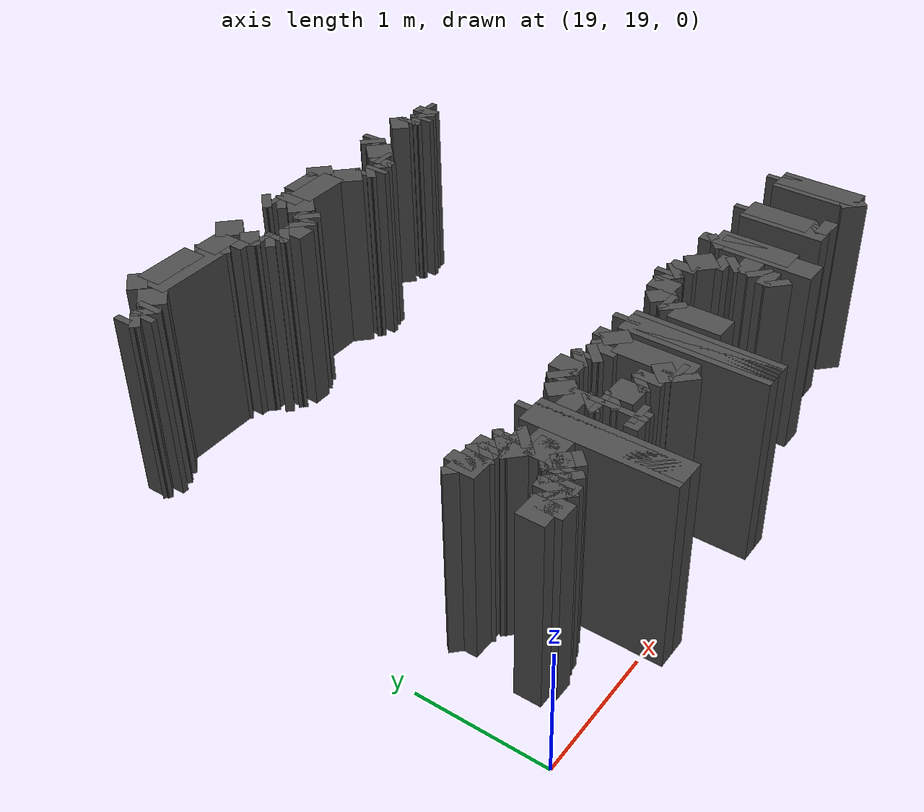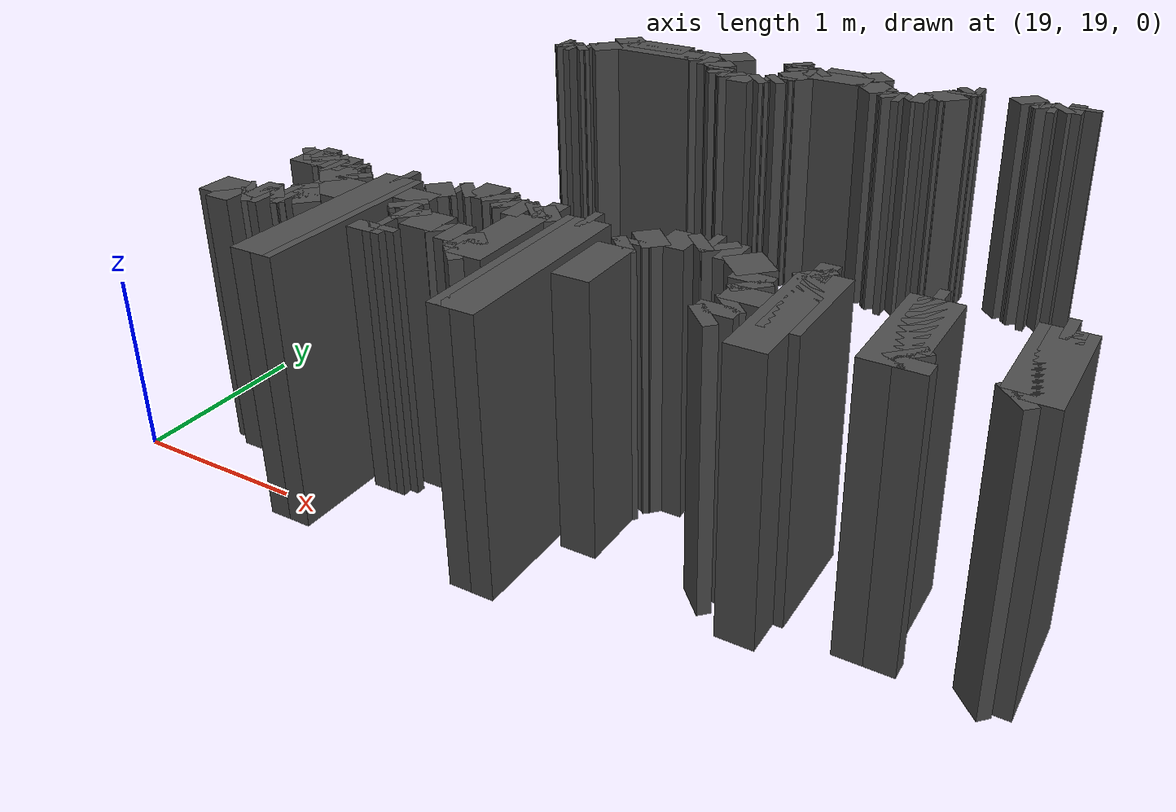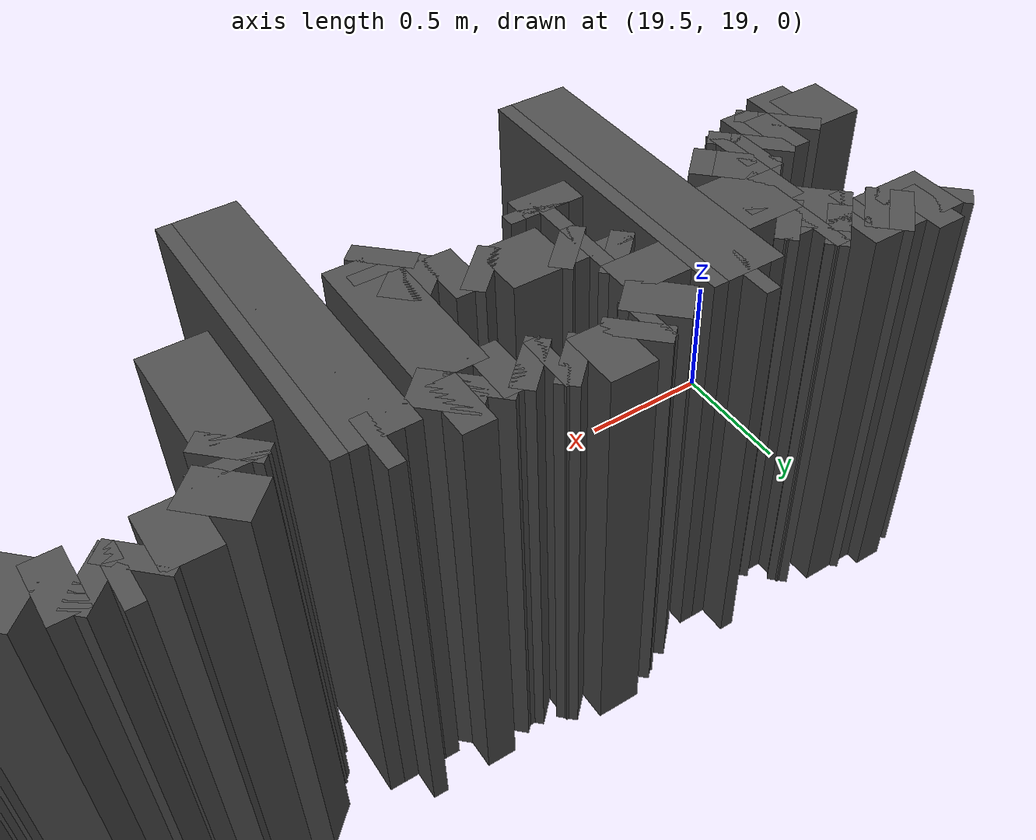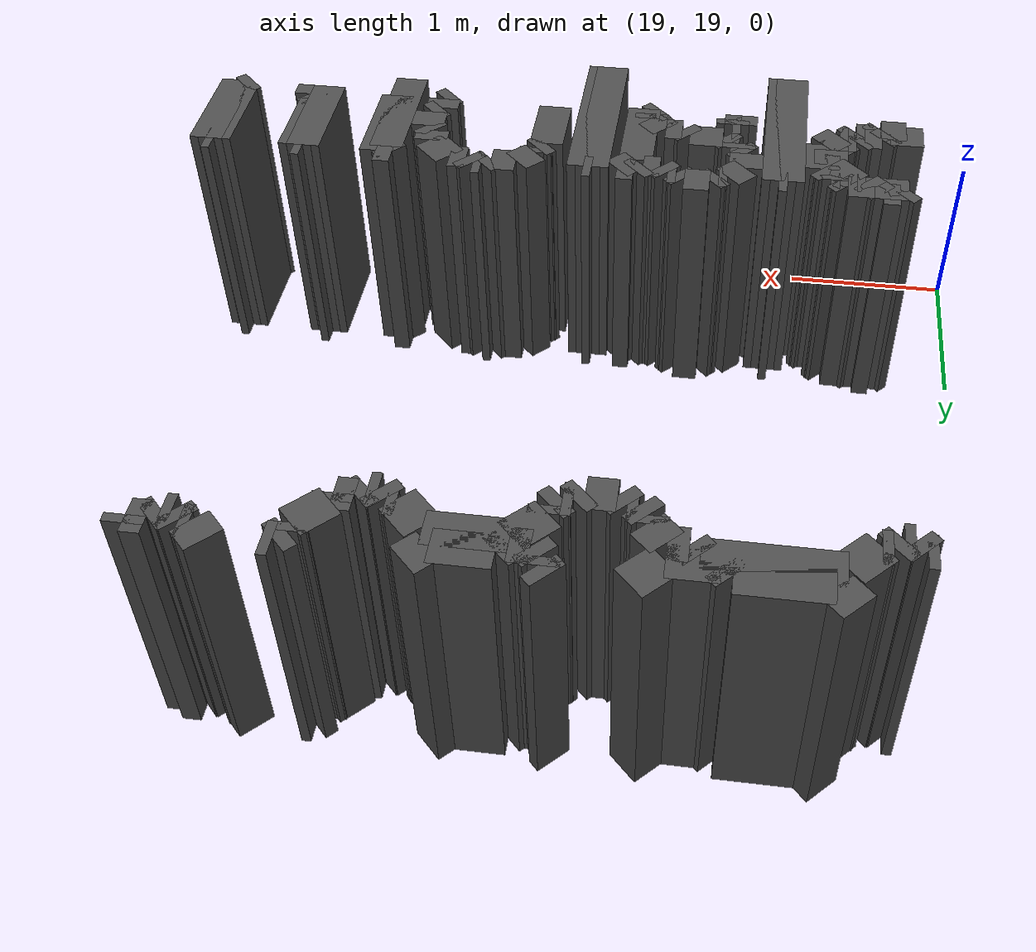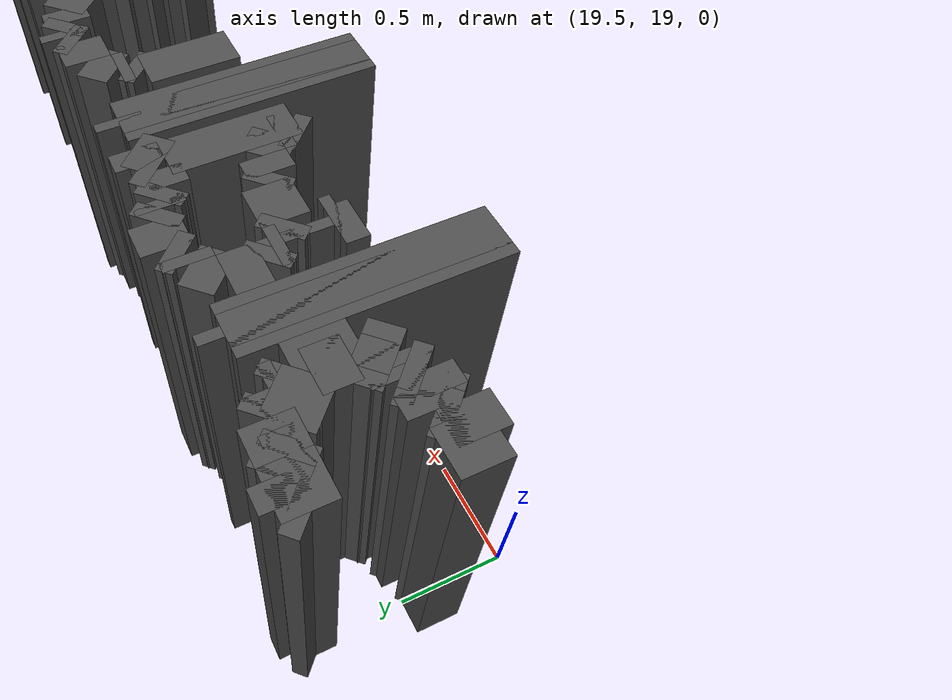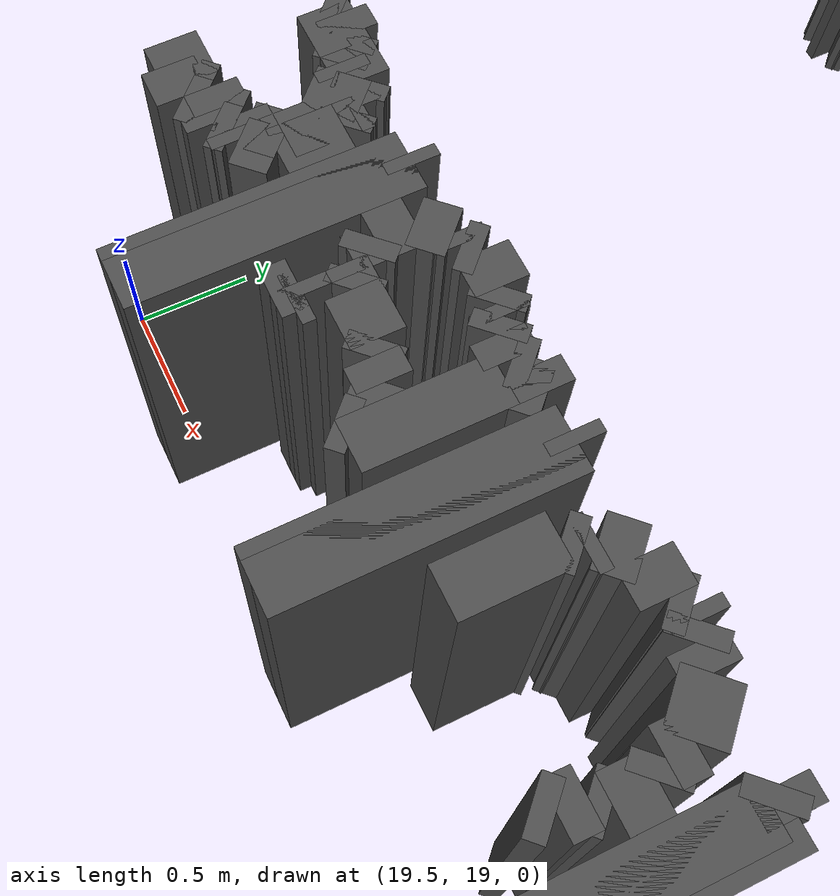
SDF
<sdf version="1.9">
 <model name="generated_walls">
  <static>true</static>
  <link name="wall_101_0">
   <pose>22.550 19.525 0.75 0 0 1.571</pose>
   <collision name="collision"><geometry><box><size>0.750 0.2 1.5</size></box></geometry></collision>
   <visual name="visual">
    <geometry><box><size>0.750 0.2 1.5</size></box></geometry>
    <material><ambient>0.3 0.3 0.3 1</ambient></material>
   </visual>
  </link>
  <link name="wall_101_1">
   <pose>22.525 19.925 0.75 0 0 2.356</pose>
   <collision name="collision"><geometry><box><size>0.071 0.2 1.5</size></box></geometry></collision>
   <visual name="visual">
    <geometry><box><size>0.071 0.2 1.5</size></box></geometry>
    <material><ambient>0.3 0.3 0.3 1</ambient></material>
   </visual>
  </link>
  <link name="wall_101_2">
   <pose>22.550 19.950 0.75 0 0 0.000</pose>
   <collision name="collision"><geometry><box><size>0.100 0.2 1.5</size></box></geometry></collision>
   <visual name="visual">
    <geometry><box><size>0.100 0.2 1.5</size></box></geometry>
    <material><ambient>0.3 0.3 0.3 1</ambient></material>
   </visual>
  </link>
  <link name="wall_101_3">
   <pose>22.600 19.650 0.75 0 0 -1.571</pose>
   <collision name="collision"><geometry><box><size>0.600 0.2 1.5</size></box></geometry></collision>
   <visual name="visual">
    <geometry><box><size>0.600 0.2 1.5</size></box></geometry>
    <material><ambient>0.3 0.3 0.3 1</ambient></material>
   </visual>
  </link>
  <link name="wall_101_7">
   <pose>23.050 19.625 0.75 0 0 1.571</pose>
   <collision name="collision"><geometry><box><size>0.650 0.2 1.5</size></box></geometry></collision>
   <visual name="visual">
    <geometry><box><size>0.650 0.2 1.5</size></box></geometry>
    <material><ambient>0.3 0.3 0.3 1</ambient></material>
   </visual>
  </link>
  <link name="wall_101_8">
   <pose>23.075 19.950 0.75 0 0 0.000</pose>
   <collision name="collision"><geometry><box><size>0.050 0.2 1.5</size></box></geometry></collision>
   <visual name="visual">
    <geometry><box><size>0.050 0.2 1.5</size></box></geometry>
    <material><ambient>0.3 0.3 0.3 1</ambient></material>
   </visual>
  </link>
  <link name="wall_101_9">
   <pose>23.100 19.700 0.75 0 0 -1.571</pose>
   <collision name="collision"><geometry><box><size>0.500 0.2 1.5</size></box></geometry></collision>
   <visual name="visual">
    <geometry><box><size>0.500 0.2 1.5</size></box></geometry>
    <material><ambient>0.3 0.3 0.3 1</ambient></material>
   </visual>
  </link>
  <link name="wall_101_10">
   <pose>23.125 19.425 0.75 0 0 -0.785</pose>
   <collision name="collision"><geometry><box><size>0.071 0.2 1.5</size></box></geometry></collision>
   <visual name="visual">
    <geometry><box><size>0.071 0.2 1.5</size></box></geometry>
    <material><ambient>0.3 0.3 0.3 1</ambient></material>
   </visual>
  </link>
  <link name="wall_101_11">
   <pose>23.150 19.350 0.75 0 0 -1.571</pose>
   <collision name="collision"><geometry><box><size>0.100 0.2 1.5</size></box></geometry></collision>
   <visual name="visual">
    <geometry><box><size>0.100 0.2 1.5</size></box></geometry>
    <material><ambient>0.3 0.3 0.3 1</ambient></material>
   </visual>
  </link>
  <link name="wall_101_16">
   <pose>23.575 19.325 0.75 0 0 0.785</pose>
   <collision name="collision"><geometry><box><size>0.071 0.2 1.5</size></box></geometry></collision>
   <visual name="visual">
    <geometry><box><size>0.071 0.2 1.5</size></box></geometry>
    <material><ambient>0.3 0.3 0.3 1</ambient></material>
   </visual>
  </link>
  <link name="wall_101_17">
   <pose>23.600 19.650 0.75 0 0 1.571</pose>
   <collision name="collision"><geometry><box><size>0.600 0.2 1.5</size></box></geometry></collision>
   <visual name="visual">
    <geometry><box><size>0.600 0.2 1.5</size></box></geometry>
    <material><ambient>0.3 0.3 0.3 1</ambient></material>
   </visual>
  </link>
  <link name="wall_101_18">
   <pose>23.625 19.950 0.75 0 0 0.000</pose>
   <collision name="collision"><geometry><box><size>0.050 0.2 1.5</size></box></geometry></collision>
   <visual name="visual">
    <geometry><box><size>0.050 0.2 1.5</size></box></geometry>
    <material><ambient>0.3 0.3 0.3 1</ambient></material>
   </visual>
  </link>
  <link name="wall_101_19">
   <pose>23.650 19.625 0.75 0 0 -1.571</pose>
   <collision name="collision"><geometry><box><size>0.650 0.2 1.5</size></box></geometry></collision>
   <visual name="visual">
    <geometry><box><size>0.650 0.2 1.5</size></box></geometry>
    <material><ambient>0.3 0.3 0.3 1</ambient></material>
   </visual>
  </link>
  <link name="wall_102_1">
   <pose>21.600 19.550 0.75 0 0 1.571</pose>
   <collision name="collision"><geometry><box><size>0.400 0.2 1.5</size></box></geometry></collision>
   <visual name="visual">
    <geometry><box><size>0.400 0.2 1.5</size></box></geometry>
    <material><ambient>0.3 0.3 0.3 1</ambient></material>
   </visual>
  </link>
  <link name="wall_102_2">
   <pose>21.625 19.775 0.75 0 0 0.785</pose>
   <collision name="collision"><geometry><box><size>0.071 0.2 1.5</size></box></geometry></collision>
   <visual name="visual">
    <geometry><box><size>0.071 0.2 1.5</size></box></geometry>
    <material><ambient>0.3 0.3 0.3 1</ambient></material>
   </visual>
  </link>
  <link name="wall_102_3">
   <pose>21.650 19.825 0.75 0 0 1.571</pose>
   <collision name="collision"><geometry><box><size>0.050 0.2 1.5</size></box></geometry></collision>
   <visual name="visual">
    <geometry><box><size>0.050 0.2 1.5</size></box></geometry>
    <material><ambient>0.3 0.3 0.3 1</ambient></material>
   </visual>
  </link>
  <link name="wall_102_4">
   <pose>21.700 19.900 0.75 0 0 0.785</pose>
   <collision name="collision"><geometry><box><size>0.141 0.2 1.5</size></box></geometry></collision>
   <visual name="visual">
    <geometry><box><size>0.141 0.2 1.5</size></box></geometry>
    <material><ambient>0.3 0.3 0.3 1</ambient></material>
   </visual>
  </link>
  <link name="wall_102_5">
   <pose>21.825 19.950 0.75 0 0 0.000</pose>
   <collision name="collision"><geometry><box><size>0.150 0.2 1.5</size></box></geometry></collision>
   <visual name="visual">
    <geometry><box><size>0.150 0.2 1.5</size></box></geometry>
    <material><ambient>0.3 0.3 0.3 1</ambient></material>
   </visual>
  </link>
  <link name="wall_102_6">
   <pose>21.925 19.975 0.75 0 0 0.785</pose>
   <collision name="collision"><geometry><box><size>0.071 0.2 1.5</size></box></geometry></collision>
   <visual name="visual">
    <geometry><box><size>0.071 0.2 1.5</size></box></geometry>
    <material><ambient>0.3 0.3 0.3 1</ambient></material>
   </visual>
  </link>
  <link name="wall_102_7">
   <pose>21.975 20.000 0.75 0 0 0.000</pose>
   <collision name="collision"><geometry><box><size>0.050 0.2 1.5</size></box></geometry></collision>
   <visual name="visual">
    <geometry><box><size>0.050 0.2 1.5</size></box></geometry>
    <material><ambient>0.3 0.3 0.3 1</ambient></material>
   </visual>
  </link>
  <link name="wall_102_8">
   <pose>22.025 19.975 0.75 0 0 -0.785</pose>
   <collision name="collision"><geometry><box><size>0.071 0.2 1.5</size></box></geometry></collision>
   <visual name="visual">
    <geometry><box><size>0.071 0.2 1.5</size></box></geometry>
    <material><ambient>0.3 0.3 0.3 1</ambient></material>
   </visual>
  </link>
  <link name="wall_102_9">
   <pose>22.100 19.950 0.75 0 0 0.000</pose>
   <collision name="collision"><geometry><box><size>0.100 0.2 1.5</size></box></geometry></collision>
   <visual name="visual">
    <geometry><box><size>0.100 0.2 1.5</size></box></geometry>
    <material><ambient>0.3 0.3 0.3 1</ambient></material>
   </visual>
  </link>
  <link name="wall_102_10">
   <pose>22.225 19.875 0.75 0 0 -0.785</pose>
   <collision name="collision"><geometry><box><size>0.212 0.2 1.5</size></box></geometry></collision>
   <visual name="visual">
    <geometry><box><size>0.212 0.2 1.5</size></box></geometry>
    <material><ambient>0.3 0.3 0.3 1</ambient></material>
   </visual>
  </link>
  <link name="wall_102_11">
   <pose>22.300 19.750 0.75 0 0 -1.571</pose>
   <collision name="collision"><geometry><box><size>0.100 0.2 1.5</size></box></geometry></collision>
   <visual name="visual">
    <geometry><box><size>0.100 0.2 1.5</size></box></geometry>
    <material><ambient>0.3 0.3 0.3 1</ambient></material>
   </visual>
  </link>
  <link name="wall_102_12">
   <pose>22.325 19.675 0.75 0 0 -0.785</pose>
   <collision name="collision"><geometry><box><size>0.071 0.2 1.5</size></box></geometry></collision>
   <visual name="visual">
    <geometry><box><size>0.071 0.2 1.5</size></box></geometry>
    <material><ambient>0.3 0.3 0.3 1</ambient></material>
   </visual>
  </link>
  <link name="wall_102_13">
   <pose>22.350 19.575 0.75 0 0 -1.571</pose>
   <collision name="collision"><geometry><box><size>0.150 0.2 1.5</size></box></geometry></collision>
   <visual name="visual">
    <geometry><box><size>0.150 0.2 1.5</size></box></geometry>
    <material><ambient>0.3 0.3 0.3 1</ambient></material>
   </visual>
  </link>
  <link name="wall_102_14">
   <pose>22.325 19.475 0.75 0 0 -2.356</pose>
   <collision name="collision"><geometry><box><size>0.071 0.2 1.5</size></box></geometry></collision>
   <visual name="visual">
    <geometry><box><size>0.071 0.2 1.5</size></box></geometry>
    <material><ambient>0.3 0.3 0.3 1</ambient></material>
   </visual>
  </link>
  <link name="wall_102_15">
   <pose>22.300 19.400 0.75 0 0 -1.571</pose>
   <collision name="collision"><geometry><box><size>0.100 0.2 1.5</size></box></geometry></collision>
   <visual name="visual">
    <geometry><box><size>0.100 0.2 1.5</size></box></geometry>
    <material><ambient>0.3 0.3 0.3 1</ambient></material>
   </visual>
  </link>
  <link name="wall_102_16">
   <pose>22.275 19.325 0.75 0 0 -2.356</pose>
   <collision name="collision"><geometry><box><size>0.071 0.2 1.5</size></box></geometry></collision>
   <visual name="visual">
    <geometry><box><size>0.071 0.2 1.5</size></box></geometry>
    <material><ambient>0.3 0.3 0.3 1</ambient></material>
   </visual>
  </link>
  <link name="wall_103_4">
   <pose>20.450 19.350 0.75 0 0 1.571</pose>
   <collision name="collision"><geometry><box><size>0.100 0.2 1.5</size></box></geometry></collision>
   <visual name="visual">
    <geometry><box><size>0.100 0.2 1.5</size></box></geometry>
    <material><ambient>0.3 0.3 0.3 1</ambient></material>
   </visual>
  </link>
  <link name="wall_103_5">
   <pose>20.475 19.400 0.75 0 0 0.000</pose>
   <collision name="collision"><geometry><box><size>0.050 0.2 1.5</size></box></geometry></collision>
   <visual name="visual">
    <geometry><box><size>0.050 0.2 1.5</size></box></geometry>
    <material><ambient>0.3 0.3 0.3 1</ambient></material>
   </visual>
  </link>
  <link name="wall_103_6">
   <pose>20.500 19.375 0.75 0 0 -1.571</pose>
   <collision name="collision"><geometry><box><size>0.050 0.2 1.5</size></box></geometry></collision>
   <visual name="visual">
    <geometry><box><size>0.050 0.2 1.5</size></box></geometry>
    <material><ambient>0.3 0.3 0.3 1</ambient></material>
   </visual>
  </link>
  <link name="wall_103_11">
   <pose>20.975 19.325 0.75 0 0 0.785</pose>
   <collision name="collision"><geometry><box><size>0.071 0.2 1.5</size></box></geometry></collision>
   <visual name="visual">
    <geometry><box><size>0.071 0.2 1.5</size></box></geometry>
    <material><ambient>0.3 0.3 0.3 1</ambient></material>
   </visual>
  </link>
  <link name="wall_103_12">
   <pose>21.000 19.375 0.75 0 0 1.571</pose>
   <collision name="collision"><geometry><box><size>0.050 0.2 1.5</size></box></geometry></collision>
   <visual name="visual">
    <geometry><box><size>0.050 0.2 1.5</size></box></geometry>
    <material><ambient>0.3 0.3 0.3 1</ambient></material>
   </visual>
  </link>
  <link name="wall_103_13">
   <pose>20.950 19.450 0.75 0 0 2.356</pose>
   <collision name="collision"><geometry><box><size>0.141 0.2 1.5</size></box></geometry></collision>
   <visual name="visual">
    <geometry><box><size>0.141 0.2 1.5</size></box></geometry>
    <material><ambient>0.3 0.3 0.3 1</ambient></material>
   </visual>
  </link>
  <link name="wall_103_14">
   <pose>20.850 19.500 0.75 0 0 3.142</pose>
   <collision name="collision"><geometry><box><size>0.100 0.2 1.5</size></box></geometry></collision>
   <visual name="visual">
    <geometry><box><size>0.100 0.2 1.5</size></box></geometry>
    <material><ambient>0.3 0.3 0.3 1</ambient></material>
   </visual>
  </link>
  <link name="wall_103_15">
   <pose>20.775 19.525 0.75 0 0 2.356</pose>
   <collision name="collision"><geometry><box><size>0.071 0.2 1.5</size></box></geometry></collision>
   <visual name="visual">
    <geometry><box><size>0.071 0.2 1.5</size></box></geometry>
    <material><ambient>0.3 0.3 0.3 1</ambient></material>
   </visual>
  </link>
  <link name="wall_103_16">
   <pose>20.650 19.550 0.75 0 0 3.142</pose>
   <collision name="collision"><geometry><box><size>0.200 0.2 1.5</size></box></geometry></collision>
   <visual name="visual">
    <geometry><box><size>0.200 0.2 1.5</size></box></geometry>
    <material><ambient>0.3 0.3 0.3 1</ambient></material>
   </visual>
  </link>
  <link name="wall_103_17">
   <pose>20.525 19.575 0.75 0 0 2.356</pose>
   <collision name="collision"><geometry><box><size>0.071 0.2 1.5</size></box></geometry></collision>
   <visual name="visual">
    <geometry><box><size>0.071 0.2 1.5</size></box></geometry>
    <material><ambient>0.3 0.3 0.3 1</ambient></material>
   </visual>
  </link>
  <link name="wall_103_18">
   <pose>20.475 19.600 0.75 0 0 3.142</pose>
   <collision name="collision"><geometry><box><size>0.050 0.2 1.5</size></box></geometry></collision>
   <visual name="visual">
    <geometry><box><size>0.050 0.2 1.5</size></box></geometry>
    <material><ambient>0.3 0.3 0.3 1</ambient></material>
   </visual>
  </link>
  <link name="wall_103_19">
   <pose>20.450 19.625 0.75 0 0 1.571</pose>
   <collision name="collision"><geometry><box><size>0.050 0.2 1.5</size></box></geometry></collision>
   <visual name="visual">
    <geometry><box><size>0.050 0.2 1.5</size></box></geometry>
    <material><ambient>0.3 0.3 0.3 1</ambient></material>
   </visual>
  </link>
  <link name="wall_103_20">
   <pose>20.425 19.675 0.75 0 0 2.356</pose>
   <collision name="collision"><geometry><box><size>0.071 0.2 1.5</size></box></geometry></collision>
   <visual name="visual">
    <geometry><box><size>0.071 0.2 1.5</size></box></geometry>
    <material><ambient>0.3 0.3 0.3 1</ambient></material>
   </visual>
  </link>
  <link name="wall_103_21">
   <pose>20.400 19.775 0.75 0 0 1.571</pose>
   <collision name="collision"><geometry><box><size>0.150 0.2 1.5</size></box></geometry></collision>
   <visual name="visual">
    <geometry><box><size>0.150 0.2 1.5</size></box></geometry>
    <material><ambient>0.3 0.3 0.3 1</ambient></material>
   </visual>
  </link>
  <link name="wall_103_22">
   <pose>20.450 19.900 0.75 0 0 0.785</pose>
   <collision name="collision"><geometry><box><size>0.141 0.2 1.5</size></box></geometry></collision>
   <visual name="visual">
    <geometry><box><size>0.141 0.2 1.5</size></box></geometry>
    <material><ambient>0.3 0.3 0.3 1</ambient></material>
   </visual>
  </link>
  <link name="wall_103_23">
   <pose>20.525 19.950 0.75 0 0 0.000</pose>
   <collision name="collision"><geometry><box><size>0.050 0.2 1.5</size></box></geometry></collision>
   <visual name="visual">
    <geometry><box><size>0.050 0.2 1.5</size></box></geometry>
    <material><ambient>0.3 0.3 0.3 1</ambient></material>
   </visual>
  </link>
  <link name="wall_103_24">
   <pose>20.575 19.975 0.75 0 0 0.785</pose>
   <collision name="collision"><geometry><box><size>0.071 0.2 1.5</size></box></geometry></collision>
   <visual name="visual">
    <geometry><box><size>0.071 0.2 1.5</size></box></geometry>
    <material><ambient>0.3 0.3 0.3 1</ambient></material>
   </visual>
  </link>
  <link name="wall_103_25">
   <pose>20.675 20.000 0.75 0 0 0.000</pose>
   <collision name="collision"><geometry><box><size>0.150 0.2 1.5</size></box></geometry></collision>
   <visual name="visual">
    <geometry><box><size>0.150 0.2 1.5</size></box></geometry>
    <material><ambient>0.3 0.3 0.3 1</ambient></material>
   </visual>
  </link>
  <link name="wall_103_26">
   <pose>20.775 19.975 0.75 0 0 -0.785</pose>
   <collision name="collision"><geometry><box><size>0.071 0.2 1.5</size></box></geometry></collision>
   <visual name="visual">
    <geometry><box><size>0.071 0.2 1.5</size></box></geometry>
    <material><ambient>0.3 0.3 0.3 1</ambient></material>
   </visual>
  </link>
  <link name="wall_103_27">
   <pose>20.825 19.950 0.75 0 0 0.000</pose>
   <collision name="collision"><geometry><box><size>0.050 0.2 1.5</size></box></geometry></collision>
   <visual name="visual">
    <geometry><box><size>0.050 0.2 1.5</size></box></geometry>
    <material><ambient>0.3 0.3 0.3 1</ambient></material>
   </visual>
  </link>
  <link name="wall_103_28">
   <pose>20.875 19.925 0.75 0 0 -0.785</pose>
   <collision name="collision"><geometry><box><size>0.071 0.2 1.5</size></box></geometry></collision>
   <visual name="visual">
    <geometry><box><size>0.071 0.2 1.5</size></box></geometry>
    <material><ambient>0.3 0.3 0.3 1</ambient></material>
   </visual>
  </link>
  <link name="wall_103_29">
   <pose>20.950 19.900 0.75 0 0 0.000</pose>
   <collision name="collision"><geometry><box><size>0.100 0.2 1.5</size></box></geometry></collision>
   <visual name="visual">
    <geometry><box><size>0.100 0.2 1.5</size></box></geometry>
    <material><ambient>0.3 0.3 0.3 1</ambient></material>
   </visual>
  </link>
  <link name="wall_103_30">
   <pose>21.025 19.925 0.75 0 0 0.785</pose>
   <collision name="collision"><geometry><box><size>0.071 0.2 1.5</size></box></geometry></collision>
   <visual name="visual">
    <geometry><box><size>0.071 0.2 1.5</size></box></geometry>
    <material><ambient>0.3 0.3 0.3 1</ambient></material>
   </visual>
  </link>
  <link name="wall_103_31">
   <pose>21.100 19.950 0.75 0 0 0.000</pose>
   <collision name="collision"><geometry><box><size>0.100 0.2 1.5</size></box></geometry></collision>
   <visual name="visual">
    <geometry><box><size>0.100 0.2 1.5</size></box></geometry>
    <material><ambient>0.3 0.3 0.3 1</ambient></material>
   </visual>
  </link>
  <link name="wall_103_32">
   <pose>21.100 19.900 0.75 0 0 -2.356</pose>
   <collision name="collision"><geometry><box><size>0.141 0.2 1.5</size></box></geometry></collision>
   <visual name="visual">
    <geometry><box><size>0.141 0.2 1.5</size></box></geometry>
    <material><ambient>0.3 0.3 0.3 1</ambient></material>
   </visual>
  </link>
  <link name="wall_103_33">
   <pose>21.050 19.575 0.75 0 0 -1.571</pose>
   <collision name="collision"><geometry><box><size>0.550 0.2 1.5</size></box></geometry></collision>
   <visual name="visual">
    <geometry><box><size>0.550 0.2 1.5</size></box></geometry>
    <material><ambient>0.3 0.3 0.3 1</ambient></material>
   </visual>
  </link>
  <link name="wall_108_0">
   <pose>21.300 19.400 0.75 0 0 1.571</pose>
   <collision name="collision"><geometry><box><size>1.100 0.2 1.5</size></box></geometry></collision>
   <visual name="visual">
    <geometry><box><size>1.100 0.2 1.5</size></box></geometry>
    <material><ambient>0.3 0.3 0.3 1</ambient></material>
   </visual>
  </link>
  <link name="wall_108_1">
   <pose>21.325 19.950 0.75 0 0 0.000</pose>
   <collision name="collision"><geometry><box><size>0.050 0.2 1.5</size></box></geometry></collision>
   <visual name="visual">
    <geometry><box><size>0.050 0.2 1.5</size></box></geometry>
    <material><ambient>0.3 0.3 0.3 1</ambient></material>
   </visual>
  </link>
  <link name="wall_108_2">
   <pose>21.350 19.400 0.75 0 0 -1.571</pose>
   <collision name="collision"><geometry><box><size>1.100 0.2 1.5</size></box></geometry></collision>
   <visual name="visual">
    <geometry><box><size>1.100 0.2 1.5</size></box></geometry>
    <material><ambient>0.3 0.3 0.3 1</ambient></material>
   </visual>
  </link>
  <link name="wall_109_0">
   <pose>20.150 19.400 0.75 0 0 1.571</pose>
   <collision name="collision"><geometry><box><size>1.100 0.2 1.5</size></box></geometry></collision>
   <visual name="visual">
    <geometry><box><size>1.100 0.2 1.5</size></box></geometry>
    <material><ambient>0.3 0.3 0.3 1</ambient></material>
   </visual>
  </link>
  <link name="wall_109_1">
   <pose>20.175 19.950 0.75 0 0 0.000</pose>
   <collision name="collision"><geometry><box><size>0.050 0.2 1.5</size></box></geometry></collision>
   <visual name="visual">
    <geometry><box><size>0.050 0.2 1.5</size></box></geometry>
    <material><ambient>0.3 0.3 0.3 1</ambient></material>
   </visual>
  </link>
  <link name="wall_109_2">
   <pose>20.200 19.400 0.75 0 0 -1.571</pose>
   <collision name="collision"><geometry><box><size>1.100 0.2 1.5</size></box></geometry></collision>
   <visual name="visual">
    <geometry><box><size>1.100 0.2 1.5</size></box></geometry>
    <material><ambient>0.3 0.3 0.3 1</ambient></material>
   </visual>
  </link>
  <link name="wall_111_7">
   <pose>19.450 19.400 0.75 0 0 0.000</pose>
   <collision name="collision"><geometry><box><size>0.200 0.2 1.5</size></box></geometry></collision>
   <visual name="visual">
    <geometry><box><size>0.200 0.2 1.5</size></box></geometry>
    <material><ambient>0.3 0.3 0.3 1</ambient></material>
   </visual>
  </link>
  <link name="wall_111_8">
   <pose>19.575 19.425 0.75 0 0 0.785</pose>
   <collision name="collision"><geometry><box><size>0.071 0.2 1.5</size></box></geometry></collision>
   <visual name="visual">
    <geometry><box><size>0.071 0.2 1.5</size></box></geometry>
    <material><ambient>0.3 0.3 0.3 1</ambient></material>
   </visual>
  </link>
  <link name="wall_111_9">
   <pose>19.650 19.450 0.75 0 0 0.000</pose>
   <collision name="collision"><geometry><box><size>0.100 0.2 1.5</size></box></geometry></collision>
   <visual name="visual">
    <geometry><box><size>0.100 0.2 1.5</size></box></geometry>
    <material><ambient>0.3 0.3 0.3 1</ambient></material>
   </visual>
  </link>
  <link name="wall_111_10">
   <pose>19.725 19.475 0.75 0 0 0.785</pose>
   <collision name="collision"><geometry><box><size>0.071 0.2 1.5</size></box></geometry></collision>
   <visual name="visual">
    <geometry><box><size>0.071 0.2 1.5</size></box></geometry>
    <material><ambient>0.3 0.3 0.3 1</ambient></material>
   </visual>
  </link>
  <link name="wall_111_11">
   <pose>19.775 19.500 0.75 0 0 0.000</pose>
   <collision name="collision"><geometry><box><size>0.050 0.2 1.5</size></box></geometry></collision>
   <visual name="visual">
    <geometry><box><size>0.050 0.2 1.5</size></box></geometry>
    <material><ambient>0.3 0.3 0.3 1</ambient></material>
   </visual>
  </link>
  <link name="wall_111_12">
   <pose>19.850 19.550 0.75 0 0 0.785</pose>
   <collision name="collision"><geometry><box><size>0.141 0.2 1.5</size></box></geometry></collision>
   <visual name="visual">
    <geometry><box><size>0.141 0.2 1.5</size></box></geometry>
    <material><ambient>0.3 0.3 0.3 1</ambient></material>
   </visual>
  </link>
  <link name="wall_111_13">
   <pose>19.900 19.675 0.75 0 0 1.571</pose>
   <collision name="collision"><geometry><box><size>0.150 0.2 1.5</size></box></geometry></collision>
   <visual name="visual">
    <geometry><box><size>0.150 0.2 1.5</size></box></geometry>
    <material><ambient>0.3 0.3 0.3 1</ambient></material>
   </visual>
  </link>
  <link name="wall_111_14">
   <pose>19.825 19.825 0.75 0 0 2.356</pose>
   <collision name="collision"><geometry><box><size>0.212 0.2 1.5</size></box></geometry></collision>
   <visual name="visual">
    <geometry><box><size>0.212 0.2 1.5</size></box></geometry>
    <material><ambient>0.3 0.3 0.3 1</ambient></material>
   </visual>
  </link>
  <link name="wall_111_15">
   <pose>19.725 19.900 0.75 0 0 3.142</pose>
   <collision name="collision"><geometry><box><size>0.050 0.2 1.5</size></box></geometry></collision>
   <visual name="visual">
    <geometry><box><size>0.050 0.2 1.5</size></box></geometry>
    <material><ambient>0.3 0.3 0.3 1</ambient></material>
   </visual>
  </link>
  <link name="wall_111_16">
   <pose>19.675 19.925 0.75 0 0 2.356</pose>
   <collision name="collision"><geometry><box><size>0.071 0.2 1.5</size></box></geometry></collision>
   <visual name="visual">
    <geometry><box><size>0.071 0.2 1.5</size></box></geometry>
    <material><ambient>0.3 0.3 0.3 1</ambient></material>
   </visual>
  </link>
  <link name="wall_111_17">
   <pose>19.550 19.950 0.75 0 0 3.142</pose>
   <collision name="collision"><geometry><box><size>0.200 0.2 1.5</size></box></geometry></collision>
   <visual name="visual">
    <geometry><box><size>0.200 0.2 1.5</size></box></geometry>
    <material><ambient>0.3 0.3 0.3 1</ambient></material>
   </visual>
  </link>
  <link name="wall_111_32">
   <pose>19.475 19.975 0.75 0 0 0.785</pose>
   <collision name="collision"><geometry><box><size>0.071 0.2 1.5</size></box></geometry></collision>
   <visual name="visual">
    <geometry><box><size>0.071 0.2 1.5</size></box></geometry>
    <material><ambient>0.3 0.3 0.3 1</ambient></material>
   </visual>
  </link>
  <link name="wall_111_33">
   <pose>19.550 20.000 0.75 0 0 0.000</pose>
   <collision name="collision"><geometry><box><size>0.100 0.2 1.5</size></box></geometry></collision>
   <visual name="visual">
    <geometry><box><size>0.100 0.2 1.5</size></box></geometry>
    <material><ambient>0.3 0.3 0.3 1</ambient></material>
   </visual>
  </link>
  <link name="wall_111_34">
   <pose>19.625 19.975 0.75 0 0 -0.785</pose>
   <collision name="collision"><geometry><box><size>0.071 0.2 1.5</size></box></geometry></collision>
   <visual name="visual">
    <geometry><box><size>0.071 0.2 1.5</size></box></geometry>
    <material><ambient>0.3 0.3 0.3 1</ambient></material>
   </visual>
  </link>
  <link name="wall_111_35">
   <pose>19.725 19.950 0.75 0 0 0.000</pose>
   <collision name="collision"><geometry><box><size>0.150 0.2 1.5</size></box></geometry></collision>
   <visual name="visual">
    <geometry><box><size>0.150 0.2 1.5</size></box></geometry>
    <material><ambient>0.3 0.3 0.3 1</ambient></material>
   </visual>
  </link>
  <link name="wall_111_36">
   <pose>19.825 19.925 0.75 0 0 -0.785</pose>
   <collision name="collision"><geometry><box><size>0.071 0.2 1.5</size></box></geometry></collision>
   <visual name="visual">
    <geometry><box><size>0.071 0.2 1.5</size></box></geometry>
    <material><ambient>0.3 0.3 0.3 1</ambient></material>
   </visual>
  </link>
  <link name="wall_111_37">
   <pose>19.875 19.900 0.75 0 0 0.000</pose>
   <collision name="collision"><geometry><box><size>0.050 0.2 1.5</size></box></geometry></collision>
   <visual name="visual">
    <geometry><box><size>0.050 0.2 1.5</size></box></geometry>
    <material><ambient>0.3 0.3 0.3 1</ambient></material>
   </visual>
  </link>
  <link name="wall_111_38">
   <pose>19.900 19.875 0.75 0 0 -1.571</pose>
   <collision name="collision"><geometry><box><size>0.050 0.2 1.5</size></box></geometry></collision>
   <visual name="visual">
    <geometry><box><size>0.050 0.2 1.5</size></box></geometry>
    <material><ambient>0.3 0.3 0.3 1</ambient></material>
   </visual>
  </link>
  <link name="wall_111_39">
   <pose>19.925 19.825 0.75 0 0 -0.785</pose>
   <collision name="collision"><geometry><box><size>0.071 0.2 1.5</size></box></geometry></collision>
   <visual name="visual">
    <geometry><box><size>0.071 0.2 1.5</size></box></geometry>
    <material><ambient>0.3 0.3 0.3 1</ambient></material>
   </visual>
  </link>
  <link name="wall_111_40">
   <pose>19.950 19.675 0.75 0 0 -1.571</pose>
   <collision name="collision"><geometry><box><size>0.250 0.2 1.5</size></box></geometry></collision>
   <visual name="visual">
    <geometry><box><size>0.250 0.2 1.5</size></box></geometry>
    <material><ambient>0.3 0.3 0.3 1</ambient></material>
   </visual>
  </link>
  <link name="wall_111_41">
   <pose>19.900 19.500 0.75 0 0 -2.356</pose>
   <collision name="collision"><geometry><box><size>0.141 0.2 1.5</size></box></geometry></collision>
   <visual name="visual">
    <geometry><box><size>0.141 0.2 1.5</size></box></geometry>
    <material><ambient>0.3 0.3 0.3 1</ambient></material>
   </visual>
  </link>
  <link name="wall_111_42">
   <pose>19.825 19.450 0.75 0 0 3.142</pose>
   <collision name="collision"><geometry><box><size>0.050 0.2 1.5</size></box></geometry></collision>
   <visual name="visual">
    <geometry><box><size>0.050 0.2 1.5</size></box></geometry>
    <material><ambient>0.3 0.3 0.3 1</ambient></material>
   </visual>
  </link>
  <link name="wall_111_43">
   <pose>19.775 19.425 0.75 0 0 -2.356</pose>
   <collision name="collision"><geometry><box><size>0.071 0.2 1.5</size></box></geometry></collision>
   <visual name="visual">
    <geometry><box><size>0.071 0.2 1.5</size></box></geometry>
    <material><ambient>0.3 0.3 0.3 1</ambient></material>
   </visual>
  </link>
  <link name="wall_111_44">
   <pose>19.700 19.400 0.75 0 0 3.142</pose>
   <collision name="collision"><geometry><box><size>0.100 0.2 1.5</size></box></geometry></collision>
   <visual name="visual">
    <geometry><box><size>0.100 0.2 1.5</size></box></geometry>
    <material><ambient>0.3 0.3 0.3 1</ambient></material>
   </visual>
  </link>
  <link name="wall_111_45">
   <pose>19.625 19.375 0.75 0 0 -2.356</pose>
   <collision name="collision"><geometry><box><size>0.071 0.2 1.5</size></box></geometry></collision>
   <visual name="visual">
    <geometry><box><size>0.071 0.2 1.5</size></box></geometry>
    <material><ambient>0.3 0.3 0.3 1</ambient></material>
   </visual>
  </link>
  <link name="wall_111_46">
   <pose>19.525 19.350 0.75 0 0 3.142</pose>
   <collision name="collision"><geometry><box><size>0.150 0.2 1.5</size></box></geometry></collision>
   <visual name="visual">
    <geometry><box><size>0.150 0.2 1.5</size></box></geometry>
    <material><ambient>0.3 0.3 0.3 1</ambient></material>
   </visual>
  </link>
  <link name="wall_161_1909">
   <pose>19.800 22.950 0.75 0 0 -0.785</pose>
   <collision name="collision"><geometry><box><size>0.141 0.2 1.5</size></box></geometry></collision>
   <visual name="visual">
    <geometry><box><size>0.141 0.2 1.5</size></box></geometry>
    <material><ambient>0.3 0.3 0.3 1</ambient></material>
   </visual>
  </link>
  <link name="wall_161_1910">
   <pose>20.075 22.900 0.75 0 0 0.000</pose>
   <collision name="collision"><geometry><box><size>0.450 0.2 1.5</size></box></geometry></collision>
   <visual name="visual">
    <geometry><box><size>0.450 0.2 1.5</size></box></geometry>
    <material><ambient>0.3 0.3 0.3 1</ambient></material>
   </visual>
  </link>
  <link name="wall_161_1911">
   <pose>20.325 22.875 0.75 0 0 -0.785</pose>
   <collision name="collision"><geometry><box><size>0.071 0.2 1.5</size></box></geometry></collision>
   <visual name="visual">
    <geometry><box><size>0.071 0.2 1.5</size></box></geometry>
    <material><ambient>0.3 0.3 0.3 1</ambient></material>
   </visual>
  </link>
  <link name="wall_161_1912">
   <pose>20.475 22.850 0.75 0 0 0.000</pose>
   <collision name="collision"><geometry><box><size>0.250 0.2 1.5</size></box></geometry></collision>
   <visual name="visual">
    <geometry><box><size>0.250 0.2 1.5</size></box></geometry>
    <material><ambient>0.3 0.3 0.3 1</ambient></material>
   </visual>
  </link>
  <link name="wall_161_1913">
   <pose>20.675 22.925 0.75 0 0 0.785</pose>
   <collision name="collision"><geometry><box><size>0.212 0.2 1.5</size></box></geometry></collision>
   <visual name="visual">
    <geometry><box><size>0.212 0.2 1.5</size></box></geometry>
    <material><ambient>0.3 0.3 0.3 1</ambient></material>
   </visual>
  </link>
  <link name="wall_161_1919">
   <pose>21.125 22.975 0.75 0 0 -0.785</pose>
   <collision name="collision"><geometry><box><size>0.071 0.2 1.5</size></box></geometry></collision>
   <visual name="visual">
    <geometry><box><size>0.071 0.2 1.5</size></box></geometry>
    <material><ambient>0.3 0.3 0.3 1</ambient></material>
   </visual>
  </link>
  <link name="wall_161_1920">
   <pose>21.150 22.925 0.75 0 0 -1.571</pose>
   <collision name="collision"><geometry><box><size>0.050 0.2 1.5</size></box></geometry></collision>
   <visual name="visual">
    <geometry><box><size>0.050 0.2 1.5</size></box></geometry>
    <material><ambient>0.3 0.3 0.3 1</ambient></material>
   </visual>
  </link>
  <link name="wall_161_1921">
   <pose>21.175 22.875 0.75 0 0 -0.785</pose>
   <collision name="collision"><geometry><box><size>0.071 0.2 1.5</size></box></geometry></collision>
   <visual name="visual">
    <geometry><box><size>0.071 0.2 1.5</size></box></geometry>
    <material><ambient>0.3 0.3 0.3 1</ambient></material>
   </visual>
  </link>
  <link name="wall_161_1922">
   <pose>21.250 22.850 0.75 0 0 0.000</pose>
   <collision name="collision"><geometry><box><size>0.100 0.2 1.5</size></box></geometry></collision>
   <visual name="visual">
    <geometry><box><size>0.100 0.2 1.5</size></box></geometry>
    <material><ambient>0.3 0.3 0.3 1</ambient></material>
   </visual>
  </link>
  <link name="wall_161_1923">
   <pose>21.325 22.875 0.75 0 0 0.785</pose>
   <collision name="collision"><geometry><box><size>0.071 0.2 1.5</size></box></geometry></collision>
   <visual name="visual">
    <geometry><box><size>0.071 0.2 1.5</size></box></geometry>
    <material><ambient>0.3 0.3 0.3 1</ambient></material>
   </visual>
  </link>
  <link name="wall_161_1924">
   <pose>21.500 22.900 0.75 0 0 0.000</pose>
   <collision name="collision"><geometry><box><size>0.300 0.2 1.5</size></box></geometry></collision>
   <visual name="visual">
    <geometry><box><size>0.300 0.2 1.5</size></box></geometry>
    <material><ambient>0.3 0.3 0.3 1</ambient></material>
   </visual>
  </link>
  <link name="wall_161_1925">
   <pose>21.700 22.950 0.75 0 0 0.785</pose>
   <collision name="collision"><geometry><box><size>0.141 0.2 1.5</size></box></geometry></collision>
   <visual name="visual">
    <geometry><box><size>0.141 0.2 1.5</size></box></geometry>
    <material><ambient>0.3 0.3 0.3 1</ambient></material>
   </visual>
  </link>
  <link name="wall_161_2247">
   <pose>23.050 22.925 0.75 0 0 -1.571</pose>
   <collision name="collision"><geometry><box><size>0.050 0.2 1.5</size></box></geometry></collision>
   <visual name="visual">
    <geometry><box><size>0.050 0.2 1.5</size></box></geometry>
    <material><ambient>0.3 0.3 0.3 1</ambient></material>
   </visual>
  </link>
  <link name="wall_161_2248">
   <pose>23.000 22.900 0.75 0 0 3.142</pose>
   <collision name="collision"><geometry><box><size>0.100 0.2 1.5</size></box></geometry></collision>
   <visual name="visual">
    <geometry><box><size>0.100 0.2 1.5</size></box></geometry>
    <material><ambient>0.3 0.3 0.3 1</ambient></material>
   </visual>
  </link>
  <link name="wall_161_2249">
   <pose>22.925 22.875 0.75 0 0 -2.356</pose>
   <collision name="collision"><geometry><box><size>0.071 0.2 1.5</size></box></geometry></collision>
   <visual name="visual">
    <geometry><box><size>0.071 0.2 1.5</size></box></geometry>
    <material><ambient>0.3 0.3 0.3 1</ambient></material>
   </visual>
  </link>
  <link name="wall_161_2250">
   <pose>22.875 22.850 0.75 0 0 3.142</pose>
   <collision name="collision"><geometry><box><size>0.050 0.2 1.5</size></box></geometry></collision>
   <visual name="visual">
    <geometry><box><size>0.050 0.2 1.5</size></box></geometry>
    <material><ambient>0.3 0.3 0.3 1</ambient></material>
   </visual>
  </link>
  <link name="wall_161_2251">
   <pose>22.825 22.875 0.75 0 0 2.356</pose>
   <collision name="collision"><geometry><box><size>0.071 0.2 1.5</size></box></geometry></collision>
   <visual name="visual">
    <geometry><box><size>0.071 0.2 1.5</size></box></geometry>
    <material><ambient>0.3 0.3 0.3 1</ambient></material>
   </visual>
  </link>
  <link name="wall_161_2252">
   <pose>22.775 22.900 0.75 0 0 3.142</pose>
   <collision name="collision"><geometry><box><size>0.050 0.2 1.5</size></box></geometry></collision>
   <visual name="visual">
    <geometry><box><size>0.050 0.2 1.5</size></box></geometry>
    <material><ambient>0.3 0.3 0.3 1</ambient></material>
   </visual>
  </link>
  <link name="wall_161_2253">
   <pose>22.700 22.950 0.75 0 0 2.356</pose>
   <collision name="collision"><geometry><box><size>0.141 0.2 1.5</size></box></geometry></collision>
   <visual name="visual">
    <geometry><box><size>0.141 0.2 1.5</size></box></geometry>
    <material><ambient>0.3 0.3 0.3 1</ambient></material>
   </visual>
  </link>
  <link name="wall_161_2256">
   <pose>22.375 22.950 0.75 0 0 3.142</pose>
   <collision name="collision"><geometry><box><size>0.050 0.2 1.5</size></box></geometry></collision>
   <visual name="visual">
    <geometry><box><size>0.050 0.2 1.5</size></box></geometry>
    <material><ambient>0.3 0.3 0.3 1</ambient></material>
   </visual>
  </link>
  <link name="wall_161_2257">
   <pose>22.325 22.925 0.75 0 0 -2.356</pose>
   <collision name="collision"><geometry><box><size>0.071 0.2 1.5</size></box></geometry></collision>
   <visual name="visual">
    <geometry><box><size>0.071 0.2 1.5</size></box></geometry>
    <material><ambient>0.3 0.3 0.3 1</ambient></material>
   </visual>
  </link>
  <link name="wall_161_2258">
   <pose>22.300 22.875 0.75 0 0 -1.571</pose>
   <collision name="collision"><geometry><box><size>0.050 0.2 1.5</size></box></geometry></collision>
   <visual name="visual">
    <geometry><box><size>0.050 0.2 1.5</size></box></geometry>
    <material><ambient>0.3 0.3 0.3 1</ambient></material>
   </visual>
  </link>
  <link name="wall_161_2259">
   <pose>22.225 22.775 0.75 0 0 -2.356</pose>
   <collision name="collision"><geometry><box><size>0.212 0.2 1.5</size></box></geometry></collision>
   <visual name="visual">
    <geometry><box><size>0.212 0.2 1.5</size></box></geometry>
    <material><ambient>0.3 0.3 0.3 1</ambient></material>
   </visual>
  </link>
  <link name="wall_161_2260">
   <pose>22.150 22.675 0.75 0 0 -1.571</pose>
   <collision name="collision"><geometry><box><size>0.050 0.2 1.5</size></box></geometry></collision>
   <visual name="visual">
    <geometry><box><size>0.050 0.2 1.5</size></box></geometry>
    <material><ambient>0.3 0.3 0.3 1</ambient></material>
   </visual>
  </link>
  <link name="wall_161_2261">
   <pose>22.100 22.650 0.75 0 0 3.142</pose>
   <collision name="collision"><geometry><box><size>0.100 0.2 1.5</size></box></geometry></collision>
   <visual name="visual">
    <geometry><box><size>0.100 0.2 1.5</size></box></geometry>
    <material><ambient>0.3 0.3 0.3 1</ambient></material>
   </visual>
  </link>
  <link name="wall_161_2262">
   <pose>22.025 22.625 0.75 0 0 -2.356</pose>
   <collision name="collision"><geometry><box><size>0.071 0.2 1.5</size></box></geometry></collision>
   <visual name="visual">
    <geometry><box><size>0.071 0.2 1.5</size></box></geometry>
    <material><ambient>0.3 0.3 0.3 1</ambient></material>
   </visual>
  </link>
  <link name="wall_161_2263">
   <pose>21.975 22.600 0.75 0 0 3.142</pose>
   <collision name="collision"><geometry><box><size>0.050 0.2 1.5</size></box></geometry></collision>
   <visual name="visual">
    <geometry><box><size>0.050 0.2 1.5</size></box></geometry>
    <material><ambient>0.3 0.3 0.3 1</ambient></material>
   </visual>
  </link>
  <link name="wall_161_2264">
   <pose>21.925 22.625 0.75 0 0 2.356</pose>
   <collision name="collision"><geometry><box><size>0.071 0.2 1.5</size></box></geometry></collision>
   <visual name="visual">
    <geometry><box><size>0.071 0.2 1.5</size></box></geometry>
    <material><ambient>0.3 0.3 0.3 1</ambient></material>
   </visual>
  </link>
  <link name="wall_161_2265">
   <pose>21.875 22.650 0.75 0 0 3.142</pose>
   <collision name="collision"><geometry><box><size>0.050 0.2 1.5</size></box></geometry></collision>
   <visual name="visual">
    <geometry><box><size>0.050 0.2 1.5</size></box></geometry>
    <material><ambient>0.3 0.3 0.3 1</ambient></material>
   </visual>
  </link>
  <link name="wall_161_2266">
   <pose>21.775 22.725 0.75 0 0 2.356</pose>
   <collision name="collision"><geometry><box><size>0.212 0.2 1.5</size></box></geometry></collision>
   <visual name="visual">
    <geometry><box><size>0.212 0.2 1.5</size></box></geometry>
    <material><ambient>0.3 0.3 0.3 1</ambient></material>
   </visual>
  </link>
  <link name="wall_161_2267">
   <pose>21.500 22.800 0.75 0 0 3.142</pose>
   <collision name="collision"><geometry><box><size>0.400 0.2 1.5</size></box></geometry></collision>
   <visual name="visual">
    <geometry><box><size>0.400 0.2 1.5</size></box></geometry>
    <material><ambient>0.3 0.3 0.3 1</ambient></material>
   </visual>
  </link>
  <link name="wall_161_2268">
   <pose>21.225 22.725 0.75 0 0 -2.356</pose>
   <collision name="collision"><geometry><box><size>0.212 0.2 1.5</size></box></geometry></collision>
   <visual name="visual">
    <geometry><box><size>0.212 0.2 1.5</size></box></geometry>
    <material><ambient>0.3 0.3 0.3 1</ambient></material>
   </visual>
  </link>
  <link name="wall_161_2269">
   <pose>21.150 22.625 0.75 0 0 -1.571</pose>
   <collision name="collision"><geometry><box><size>0.050 0.2 1.5</size></box></geometry></collision>
   <visual name="visual">
    <geometry><box><size>0.050 0.2 1.5</size></box></geometry>
    <material><ambient>0.3 0.3 0.3 1</ambient></material>
   </visual>
  </link>
  <link name="wall_161_2270">
   <pose>21.125 22.575 0.75 0 0 -2.356</pose>
   <collision name="collision"><geometry><box><size>0.071 0.2 1.5</size></box></geometry></collision>
   <visual name="visual">
    <geometry><box><size>0.071 0.2 1.5</size></box></geometry>
    <material><ambient>0.3 0.3 0.3 1</ambient></material>
   </visual>
  </link>
  <link name="wall_161_2271">
   <pose>21.075 22.550 0.75 0 0 3.142</pose>
   <collision name="collision"><geometry><box><size>0.050 0.2 1.5</size></box></geometry></collision>
   <visual name="visual">
    <geometry><box><size>0.050 0.2 1.5</size></box></geometry>
    <material><ambient>0.3 0.3 0.3 1</ambient></material>
   </visual>
  </link>
  <link name="wall_161_2272">
   <pose>21.025 22.525 0.75 0 0 -2.356</pose>
   <collision name="collision"><geometry><box><size>0.071 0.2 1.5</size></box></geometry></collision>
   <visual name="visual">
    <geometry><box><size>0.071 0.2 1.5</size></box></geometry>
    <material><ambient>0.3 0.3 0.3 1</ambient></material>
   </visual>
  </link>
  <link name="wall_161_2273">
   <pose>20.925 22.500 0.75 0 0 3.142</pose>
   <collision name="collision"><geometry><box><size>0.150 0.2 1.5</size></box></geometry></collision>
   <visual name="visual">
    <geometry><box><size>0.150 0.2 1.5</size></box></geometry>
    <material><ambient>0.3 0.3 0.3 1</ambient></material>
   </visual>
  </link>
  <link name="wall_161_2274">
   <pose>20.825 22.525 0.75 0 0 2.356</pose>
   <collision name="collision"><geometry><box><size>0.071 0.2 1.5</size></box></geometry></collision>
   <visual name="visual">
    <geometry><box><size>0.071 0.2 1.5</size></box></geometry>
    <material><ambient>0.3 0.3 0.3 1</ambient></material>
   </visual>
  </link>
  <link name="wall_161_2275">
   <pose>20.775 22.550 0.75 0 0 3.142</pose>
   <collision name="collision"><geometry><box><size>0.050 0.2 1.5</size></box></geometry></collision>
   <visual name="visual">
    <geometry><box><size>0.050 0.2 1.5</size></box></geometry>
    <material><ambient>0.3 0.3 0.3 1</ambient></material>
   </visual>
  </link>
  <link name="wall_161_2276">
   <pose>20.725 22.575 0.75 0 0 2.356</pose>
   <collision name="collision"><geometry><box><size>0.071 0.2 1.5</size></box></geometry></collision>
   <visual name="visual">
    <geometry><box><size>0.071 0.2 1.5</size></box></geometry>
    <material><ambient>0.3 0.3 0.3 1</ambient></material>
   </visual>
  </link>
  <link name="wall_161_2277">
   <pose>20.700 22.625 0.75 0 0 1.571</pose>
   <collision name="collision"><geometry><box><size>0.050 0.2 1.5</size></box></geometry></collision>
   <visual name="visual">
    <geometry><box><size>0.050 0.2 1.5</size></box></geometry>
    <material><ambient>0.3 0.3 0.3 1</ambient></material>
   </visual>
  </link>
  <link name="wall_161_2278">
   <pose>20.650 22.700 0.75 0 0 2.356</pose>
   <collision name="collision"><geometry><box><size>0.141 0.2 1.5</size></box></geometry></collision>
   <visual name="visual">
    <geometry><box><size>0.141 0.2 1.5</size></box></geometry>
    <material><ambient>0.3 0.3 0.3 1</ambient></material>
   </visual>
  </link>
  <link name="wall_161_2279">
   <pose>20.550 22.750 0.75 0 0 3.142</pose>
   <collision name="collision"><geometry><box><size>0.100 0.2 1.5</size></box></geometry></collision>
   <visual name="visual">
    <geometry><box><size>0.100 0.2 1.5</size></box></geometry>
    <material><ambient>0.3 0.3 0.3 1</ambient></material>
   </visual>
  </link>
  <link name="wall_161_2280">
   <pose>20.475 22.775 0.75 0 0 2.356</pose>
   <collision name="collision"><geometry><box><size>0.071 0.2 1.5</size></box></geometry></collision>
   <visual name="visual">
    <geometry><box><size>0.071 0.2 1.5</size></box></geometry>
    <material><ambient>0.3 0.3 0.3 1</ambient></material>
   </visual>
  </link>
  <link name="wall_161_2281">
   <pose>20.125 22.800 0.75 0 0 3.142</pose>
   <collision name="collision"><geometry><box><size>0.650 0.2 1.5</size></box></geometry></collision>
   <visual name="visual">
    <geometry><box><size>0.650 0.2 1.5</size></box></geometry>
    <material><ambient>0.3 0.3 0.3 1</ambient></material>
   </visual>
  </link>
  <link name="wall_161_2282">
   <pose>19.725 22.725 0.75 0 0 -2.356</pose>
   <collision name="collision"><geometry><box><size>0.212 0.2 1.5</size></box></geometry></collision>
   <visual name="visual">
    <geometry><box><size>0.212 0.2 1.5</size></box></geometry>
    <material><ambient>0.3 0.3 0.3 1</ambient></material>
   </visual>
  </link>
  <link name="wall_161_2283">
   <pose>19.625 22.650 0.75 0 0 3.142</pose>
   <collision name="collision"><geometry><box><size>0.050 0.2 1.5</size></box></geometry></collision>
   <visual name="visual">
    <geometry><box><size>0.050 0.2 1.5</size></box></geometry>
    <material><ambient>0.3 0.3 0.3 1</ambient></material>
   </visual>
  </link>
  <link name="wall_161_2284">
   <pose>19.575 22.625 0.75 0 0 -2.356</pose>
   <collision name="collision"><geometry><box><size>0.071 0.2 1.5</size></box></geometry></collision>
   <visual name="visual">
    <geometry><box><size>0.071 0.2 1.5</size></box></geometry>
    <material><ambient>0.3 0.3 0.3 1</ambient></material>
   </visual>
  </link>
  <link name="wall_161_2285">
   <pose>19.525 22.600 0.75 0 0 3.142</pose>
   <collision name="collision"><geometry><box><size>0.050 0.2 1.5</size></box></geometry></collision>
   <visual name="visual">
    <geometry><box><size>0.050 0.2 1.5</size></box></geometry>
    <material><ambient>0.3 0.3 0.3 1</ambient></material>
   </visual>
  </link>
  <link name="wall_161_2286">
   <pose>19.475 22.625 0.75 0 0 2.356</pose>
   <collision name="collision"><geometry><box><size>0.071 0.2 1.5</size></box></geometry></collision>
   <visual name="visual">
    <geometry><box><size>0.071 0.2 1.5</size></box></geometry>
    <material><ambient>0.3 0.3 0.3 1</ambient></material>
   </visual>
  </link>
  <link name="wall_161_2287">
   <pose>19.425 22.650 0.75 0 0 3.142</pose>
   <collision name="collision"><geometry><box><size>0.050 0.2 1.5</size></box></geometry></collision>
   <visual name="visual">
    <geometry><box><size>0.050 0.2 1.5</size></box></geometry>
    <material><ambient>0.3 0.3 0.3 1</ambient></material>
   </visual>
  </link>
 </model>
</sdf>
